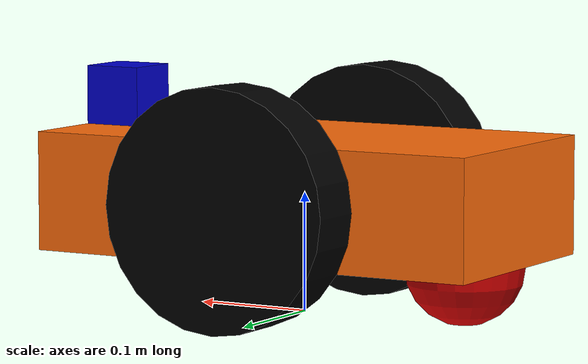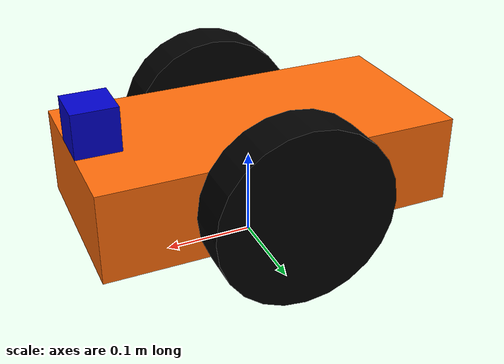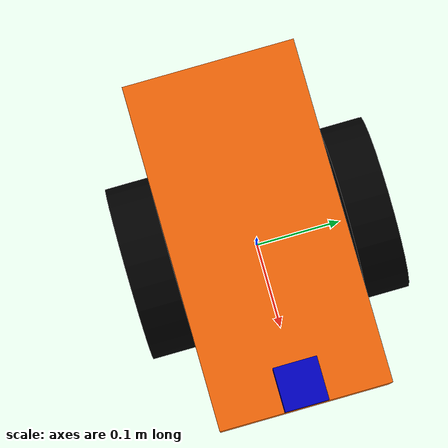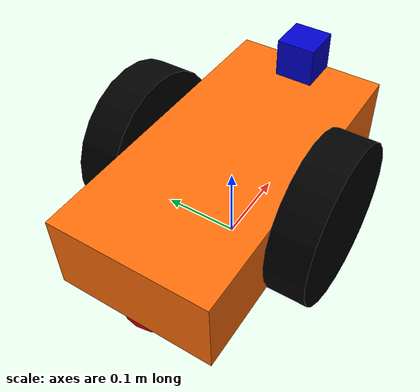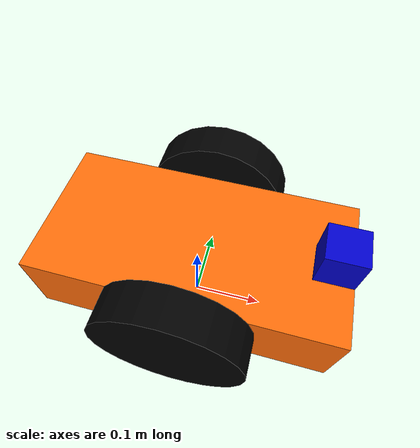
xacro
<?xml version="1.0"?>
<robot name="mybot" xmlns:xacro="http://www.ros.org/wiki/xacro">

        <!-- Put here the robot description -->
        <xacro:property name="PI" value="3.1415926535897931"/>

        <xacro:property name="chassisHeight" value="0.1"/>
        <xacro:property name="chassisLength" value="0.4"/>
        <xacro:property name="chassisWidth" value="0.2"/>
        <xacro:property name="chassisMass" value="50"/>

        <xacro:property name="casterRadius" value="0.05"/>
        <xacro:property name="casterMass" value="5"/>

        <xacro:property name="wheelWidth" value="0.05"/>
        <xacro:property name="wheelRadius" value="0.1"/>
        <xacro:property name="wheelPos" value="0.2"/>
        <xacro:property name="wheelMass" value="5"/>

        <xacro:property name="cameraSize" value="0.05"/>
        <xacro:property name="cameraMass" value="0.1"/>

        <!-- Definition of materials (mostly colours) -->
        <xacro:include filename="$(find mybot_description)/urdf/materials.xacro"/>
        <!-- Definitions of some macros for easier description of the robot -->
        <xacro:include filename="$(find mybot_description)/urdf/macros.xacro" />
        <!-- Gazebo-specific aspects of our robot -->
        <xacro:include filename="$(find mybot_description)/urdf/mybot.gazebo" />

        <!-- The physic engine does not accept a base_link with inertia. It is then useful to add a simple link without inertia and make a joint between it and the chassis -->
        <link name="footprint_link" />

        <joint name="base_joint" type="fixed">
                <parent link="footprint_link"/>
                <child link="chassis_link"/>
        </joint>

        <link name='chassis_link'>
                <collision>
                        <origin xyz="0 0 ${wheelRadius}" rpy="0 0 0"/>
                        <geometry>
                                <box size="${chassisLength} ${chassisWidth} ${chassisHeight}"/>
                        </geometry>
                </collision>
                <visual>
                        <origin xyz="0 0 ${wheelRadius}" rpy="0 0 0"/>
                        <geometry>
                                <box size="${chassisLength} ${chassisWidth} ${chassisHeight}"/>
                        </geometry>
                        <!-- Colour that comes from the materials.xacro  -->
                        <material name="orange"/>
                </visual>
                <inertial>
                        <origin xyz="0 0 ${wheelRadius}" rpy="0 0 0"/>
                        <mass value="${chassisMass}"/>
                        <!-- Macro that comes from the materials.xacro -->
                        <box_inertia m="${chassisMass}" x="${chassisLength}" y="${chassisWidth}" z="${chassisHeight}"/>
                </inertial>
        </link>

        <joint name="fixed_joint" type="fixed">
                <parent link="chassis_link"/>
                <child link="caster_wheel_link"/>
                <origin xyz="${casterRadius-chassisLength/2} 0 ${casterRadius-chassisHeight+wheelRadius}" rpy="0 0 0"/>
        </joint>

        <link name="caster_wheel_link">
                <collision>
                        <origin xyz="0 0 0" rpy="0 0 0"/>
                        <geometry>
                                <sphere radius="${casterRadius}"/>
                        </geometry>
                </collision>

                <visual>
                        <origin xyz="0 0 0" rpy="0 0 0"/>
                        <geometry>
                                <sphere radius="${casterRadius}"/>
                        </geometry>
                        <material name="red"/>
                </visual>

                <inertial>
                        <origin xyz="0 0 0" rpy="0 0 0"/>
                        <mass value="${casterMass}"/>
                        <sphere_inertia m="${casterMass}" r="${casterRadius}"/>
                </inertial>
        </link>

        <wheel lr="left" tY="1"/>
        <wheel lr="right" tY="-1"/>

        <joint name="camera_joint" type="fixed">
                <parent link="chassis_link"/>
                <child link="camera_link"/>
                <origin xyz="${chassisLength/2 - cameraSize/2} 0 ${chassisHeight + wheelRadius - chassisHeight/2 + cameraSize/2}" rpy="0 0 0"/>
        </joint>

        <link name="camera_link">
                <collision>
                        <origin xyz="0 0 0" rpy="0 0 0"/>
                        <geometry>
                                <box size="${cameraSize} ${cameraSize} ${cameraSize}"/>
                        </geometry>
                </collision>

                <visual>
                        <origin xyz="0 0 0" rpy="0 0 0"/>
                        <geometry>
                                <box size="${cameraSize} ${cameraSize} ${cameraSize}"/>
                        </geometry>
                        <material name="blue"/>
                </visual>

                <inertial>
                        <mass value="${cameraMass}" />
                        <origin xyz="0 0 0" rpy="0 0 0"/>
                        <box_inertia m="${cameraMass}" x="${cameraSize}" y="${cameraSize}" z="${cameraSize}" />
                </inertial>
        </link>

</robot>

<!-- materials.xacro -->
<robot xmlns:xacro="http://www.ros.org/wiki/xacro">
	<material name="black">
	  <color rgba="0.0 0.0 0.0 1.0"/>
	</material>

	<material name="blue">
	  <color rgba="0.0 0.0 0.8 1.0"/>
	</material>

	<material name="green">
	  <color rgba="0.0 0.8 0.0 1.0"/>
	</material>

	<material name="grey">
	  <color rgba="0.2 0.2 0.2 1.0"/>
	</material>

	<material name="orange">
	  <color rgba="${255/255} ${108/255} ${10/255} 1.0"/>
	</material>

	<material name="brown">
	  <color rgba="${222/255} ${207/255} ${195/255} 1.0"/>
	</material>

	<material name="red">
	  <color rgba="0.8 0.0 0.0 1.0"/>
	</material>

	<material name="white">
	  <color rgba="1.0 1.0 1.0 1.0"/>
	</material>
</robot>

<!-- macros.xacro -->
<robot xmlns:xacro="http://www.ros.org/wiki/xacro">
	<!-- Macros used for inertia -->
	<xacro:macro name="cylinder_inertia" params="m r h">
	  <inertia  ixx="${m*(3*r*r+h*h)/12}" ixy = "0" ixz = "0"
	    iyy="${m*(3*r*r+h*h)/12}" iyz = "0"
	    izz="${m*r*r/2}"
	  />
	</xacro:macro>

	<xacro:macro name="box_inertia" params="m x y z">
	  <inertia  ixx="${m*(y*y+z*z)/12}" ixy = "0" ixz = "0"
	    iyy="${m*(x*x+z*z)/12}" iyz = "0"
	    izz="${m*(x*x+z*z)/12}"
	  />
	</xacro:macro>

	<xacro:macro name="sphere_inertia" params="m r">
	  <inertia  ixx="${2*m*r*r/5}" ixy = "0" ixz = "0"
	    iyy="${2*m*r*r/5}" iyz = "0"
	    izz="${2*m*r*r/5}"
	  />
	</xacro:macro>

	<!-- Macro for the wheels -->
	<xacro:macro name="wheel" params="lr tY">
		<link name="${lr}_wheel_link">
			<collision>
				<origin xyz="0 0 0" rpy="0 ${PI/2} ${PI/2}" />
				<geometry>
					<cylinder length="${wheelWidth}" radius="${wheelRadius}"/>
				</geometry>
			</collision>

			<visual>
				<origin xyz="0 0 0" rpy="0 ${PI/2} ${PI/2}" />
				<geometry>
					<cylinder length="${wheelWidth}" radius="${wheelRadius}"/>
				</geometry>
				<material name="black"/>
			</visual>

			<inertial>
				<origin xyz="0 0 0" rpy="0 ${PI/2} ${PI/2}" />
				<mass value="${wheelMass}"/>
				<cylinder_inertia m="${wheelMass}" r="${wheelRadius}" h="${wheelWidth}"/>
			</inertial>
		</link>

		<gazebo reference="${lr}_wheel_link">
			<mu1 value="1.0"/>
			<mu2 value="1.0"/>
			<kp  value="10000000.0" />
			<kd  value="1.0" />
			<fdir1 value="1 0 0"/>
			<material>Gazebo/Black</material>
		</gazebo>

		<joint name="${lr}_wheel_hinge_joint" type="continuous">
			<parent link="chassis_link"/>
			<child link="${lr}_wheel_link"/>
			<origin xyz="${-wheelPos+chassisLength/2} ${tY*wheelWidth/2+tY*chassisWidth/2} ${wheelRadius}" rpy="0 0 0" />
			<axis xyz="0 1 0" rpy="0 0 0" />
			<limit effort="100" velocity="100"/>
			<joint_properties damping="0.0" friction="0.0"/>
		</joint>

		<transmission name="${lr}_trans">
			<type>transmission_interface/SimpleTransmission</type>
			<joint name="${lr}_wheel_hinge_joint">
			    <hardwareInterface>hardware_interface/EffortJointInterface</hardwareInterface>
			</joint>
			<actuator name="${lr}Motor">
				<hardwareInterface>hardware_interface/EffortJointInterface</hardwareInterface>
				<mechanicalReduction>10</mechanicalReduction>
			</actuator>
		</transmission>
	</xacro:macro>
</robot>
